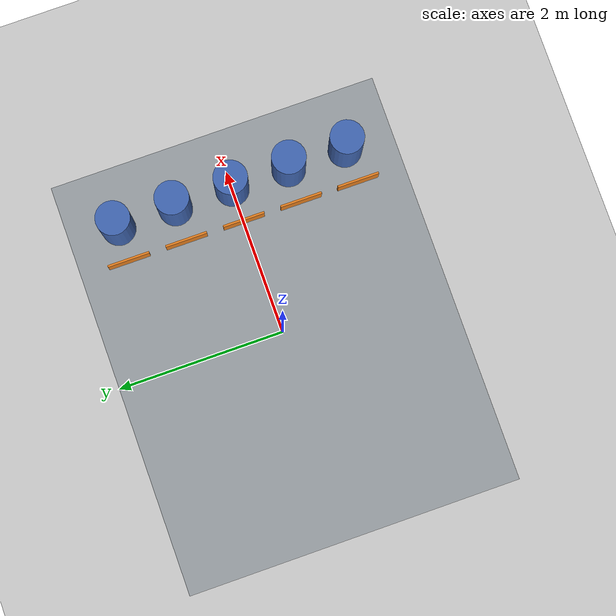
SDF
<?xml version="1.0"?>
<sdf version="1.6"><world name="planta_bombeo_agv">
<include><uri>model://sun</uri></include>
<include><uri>model://ground_plane</uri></include>
<physics type="ode"><real_time_update_rate>1000</real_time_update_rate><max_step_size>0.001</max_step_size></physics>

<model name="area_industrial"><static>true</static><pose>0 0 0.005 0 0 0</pose><link name="link"><collision name="collision"><geometry><box><size>5 4 0.01</size></box></geometry></collision><visual name="visual"><geometry><box><size>5 4 0.01</size></box></geometry><material><ambient>0.6 0.62 0.64 1</ambient><diffuse>0.6 0.62 0.64 1</diffuse></material></visual></link></model>
<model name="maquina_1"><static>true</static><pose>1.78 -1.4 0.35 0 0 0</pose><link name="link"><collision name="collision"><geometry><cylinder><radius>0.2</radius><length>0.7</length></cylinder></geometry></collision><visual name="visual"><geometry><cylinder><radius>0.2</radius><length>0.7</length></cylinder></geometry><material><ambient>0.25 0.4 0.7 1</ambient></material></visual></link></model>
<model name="placa_1"><static>true</static><pose>1.35 -1.4 0.2 0 0 0</pose><link name="link"><collision name="collision"><geometry><box><size>0.025 0.5 0.2</size></box></geometry></collision><visual name="visual"><geometry><box><size>0.025 0.5 0.2</size></box></geometry><material><ambient>0.9 0.5 0.12 1</ambient><diffuse>0.9 0.5 0.12 1</diffuse></material></visual></link></model>
<model name="maquina_2"><static>true</static><pose>1.78 -0.7 0.35 0 0 0</pose><link name="link"><collision name="collision"><geometry><cylinder><radius>0.2</radius><length>0.7</length></cylinder></geometry></collision><visual name="visual"><geometry><cylinder><radius>0.2</radius><length>0.7</length></cylinder></geometry><material><ambient>0.25 0.4 0.7 1</ambient></material></visual></link></model>
<model name="placa_2"><static>true</static><pose>1.35 -0.7 0.2 0 0 0</pose><link name="link"><collision name="collision"><geometry><box><size>0.025 0.5 0.2</size></box></geometry></collision><visual name="visual"><geometry><box><size>0.025 0.5 0.2</size></box></geometry><material><ambient>0.9 0.5 0.12 1</ambient><diffuse>0.9 0.5 0.12 1</diffuse></material></visual></link></model>
<model name="maquina_3"><static>true</static><pose>1.78 0.0 0.35 0 0 0</pose><link name="link"><collision name="collision"><geometry><cylinder><radius>0.2</radius><length>0.7</length></cylinder></geometry></collision><visual name="visual"><geometry><cylinder><radius>0.2</radius><length>0.7</length></cylinder></geometry><material><ambient>0.25 0.4 0.7 1</ambient></material></visual></link></model>
<model name="placa_3"><static>true</static><pose>1.35 0.0 0.2 0 0 0</pose><link name="link"><collision name="collision"><geometry><box><size>0.025 0.5 0.2</size></box></geometry></collision><visual name="visual"><geometry><box><size>0.025 0.5 0.2</size></box></geometry><material><ambient>0.9 0.5 0.12 1</ambient><diffuse>0.9 0.5 0.12 1</diffuse></material></visual></link></model>
<model name="maquina_4"><static>true</static><pose>1.78 0.7 0.35 0 0 0</pose><link name="link"><collision name="collision"><geometry><cylinder><radius>0.2</radius><length>0.7</length></cylinder></geometry></collision><visual name="visual"><geometry><cylinder><radius>0.2</radius><length>0.7</length></cylinder></geometry><material><ambient>0.25 0.4 0.7 1</ambient></material></visual></link></model>
<model name="placa_4"><static>true</static><pose>1.35 0.7 0.2 0 0 0</pose><link name="link"><collision name="collision"><geometry><box><size>0.025 0.5 0.2</size></box></geometry></collision><visual name="visual"><geometry><box><size>0.025 0.5 0.2</size></box></geometry><material><ambient>0.9 0.5 0.12 1</ambient><diffuse>0.9 0.5 0.12 1</diffuse></material></visual></link></model>
<model name="maquina_5"><static>true</static><pose>1.78 1.4 0.35 0 0 0</pose><link name="link"><collision name="collision"><geometry><cylinder><radius>0.2</radius><length>0.7</length></cylinder></geometry></collision><visual name="visual"><geometry><cylinder><radius>0.2</radius><length>0.7</length></cylinder></geometry><material><ambient>0.25 0.4 0.7 1</ambient></material></visual></link></model>
<model name="placa_5"><static>true</static><pose>1.35 1.4 0.2 0 0 0</pose><link name="link"><collision name="collision"><geometry><box><size>0.025 0.5 0.2</size></box></geometry></collision><visual name="visual"><geometry><box><size>0.025 0.5 0.2</size></box></geometry><material><ambient>0.9 0.5 0.12 1</ambient><diffuse>0.9 0.5 0.12 1</diffuse></material></visual></link></model>
</world></sdf>
